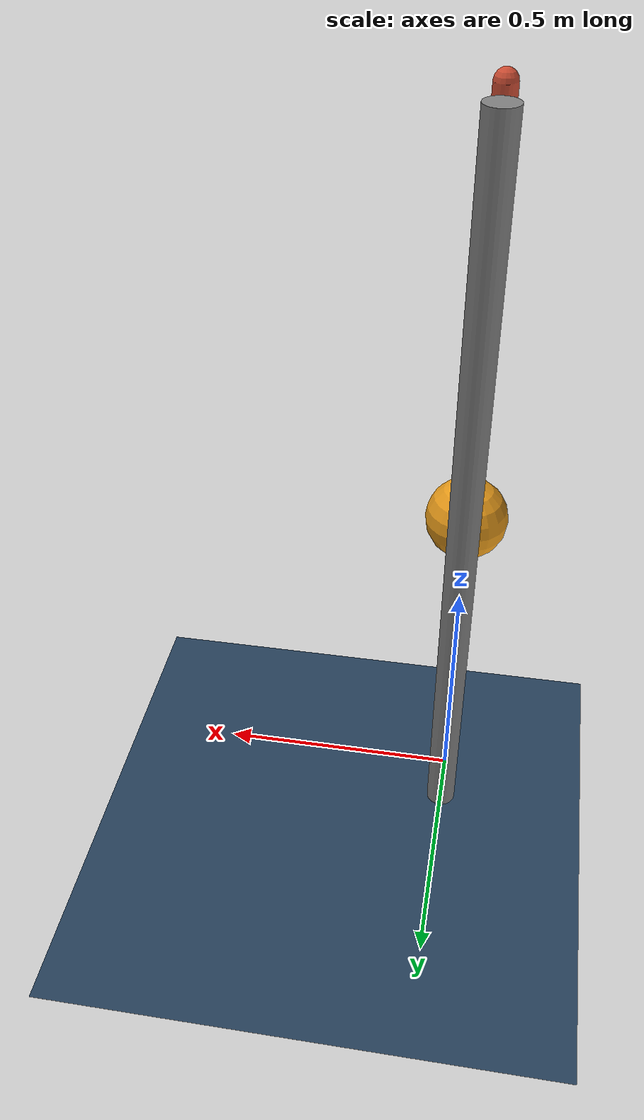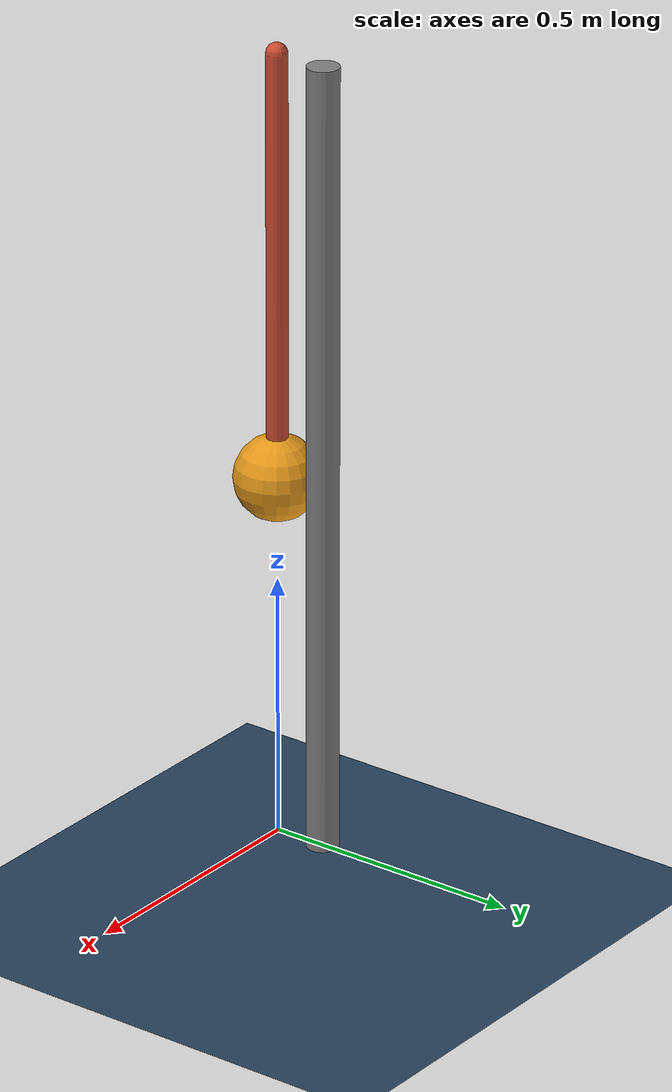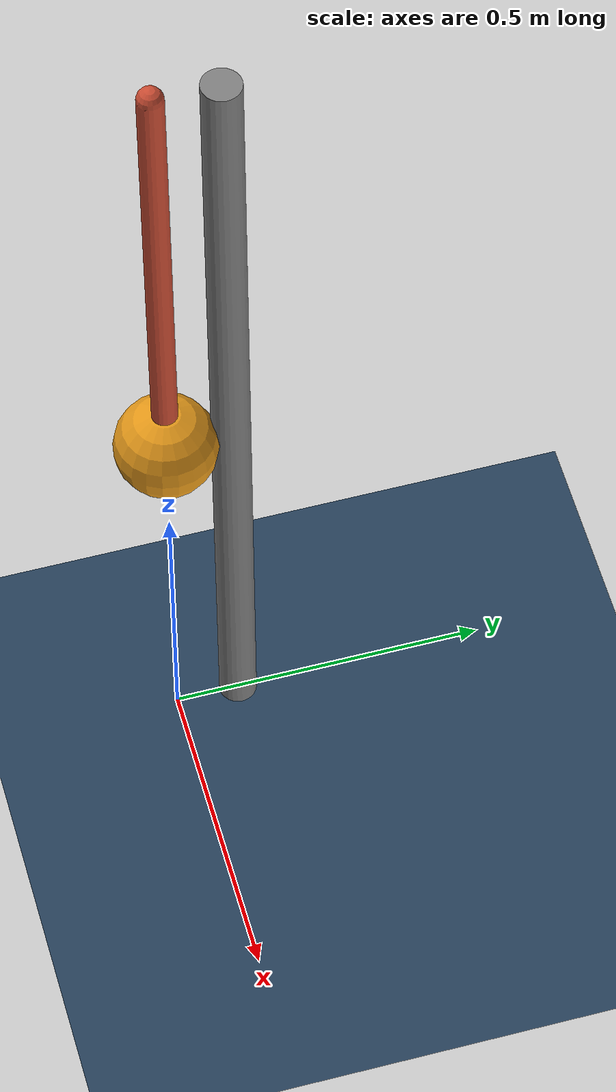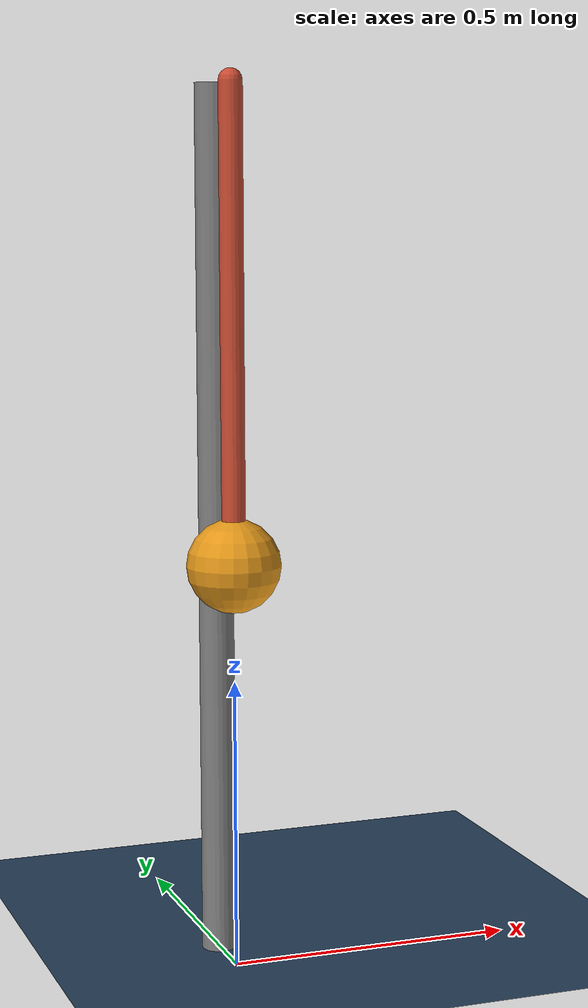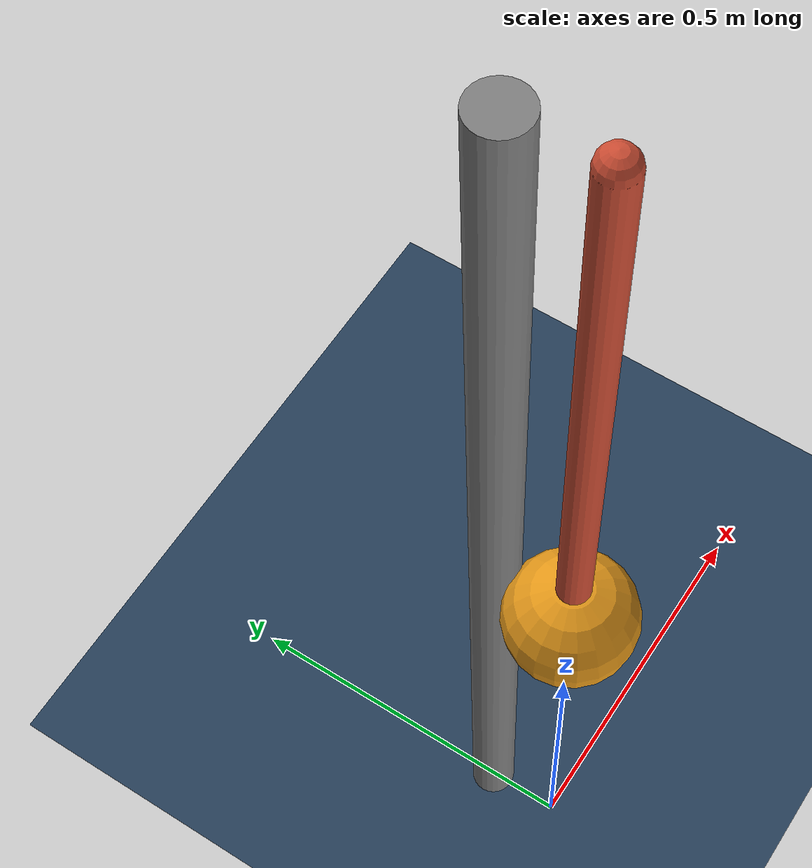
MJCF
<mujoco model="one_joint">

  <!-- timestep: the size of one physics step (seconds). Each call to
       mj_step advances data.time by exactly this amount. 2 ms = 500 Hz. -->
  <option timestep="0.002" gravity="0 0 -9.81" integrator="RK4"/>

  <!-- Purely cosmetic: a checker texture for the floor and a skybox. -->
  <asset>
    <texture name="grid" type="2d" builtin="checker" width="512" height="512"
             rgb1="0.2 0.3 0.4" rgb2="0.1 0.2 0.3"/>
    <material name="grid" texture="grid" texrepeat="4 4" reflectance="0.1"/>
    <texture name="sky" type="skybox" builtin="gradient" rgb1="0.6 0.8 1" rgb2="0 0 0"
             width="256" height="256"/>
  </asset>

  <worldbody>
    <!-- A directional light from above so offscreen renders are not dark. -->
    <light name="sun" pos="0 0 3" dir="0 0 -1" directional="true"/>

    <!-- Ground plane (size: half-x, half-y, grid spacing). -->
    <geom name="floor" type="plane" size="2 2 0.1" material="grid"/>

    <geom name="post" type="cylinder" fromto="0 0.1 0  0 0.1 1.5" size="0.03"
          rgba="0.5 0.5 0.5 1" contype="0" conaffinity="0"/>

    <!-- The moving body. Its frame sits at the pivot, 1.5 m above the floor. -->
    <body name="link" pos="0 0 1.5">
      <!-- The ONE hinge joint: rotates about the y-axis, so the link swings
           in the x-z plane. damping adds a small viscous torque (-damping*qvel)
           so motion slowly decays. -->
      <joint name="hinge" type="hinge" axis="0 1 0" damping="0.05"/>

      <!-- The link: a 0.8 m capsule pointing straight down, plus a heavy bob.
           Mass/inertia are computed automatically from geometry and density. -->
      <geom name="rod" type="capsule" fromto="0 0 0  0 0 -0.8" size="0.02" rgba="0.8 0.3 0.2 1"/>
      <geom name="bob" type="sphere" pos="0 0 -0.8" size="0.08" rgba="0.9 0.6 0.1 1"/>
    </body>
  </worldbody>

  <actuator>
    <motor name="torque" joint="hinge" gear="1" ctrlrange="-50 50" ctrllimited="true"/>
  </actuator>

</mujoco>
